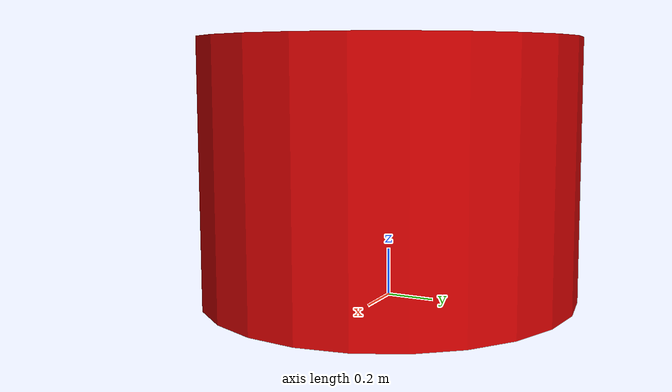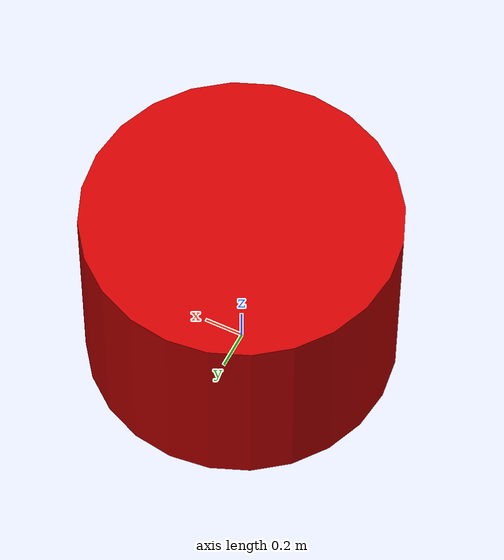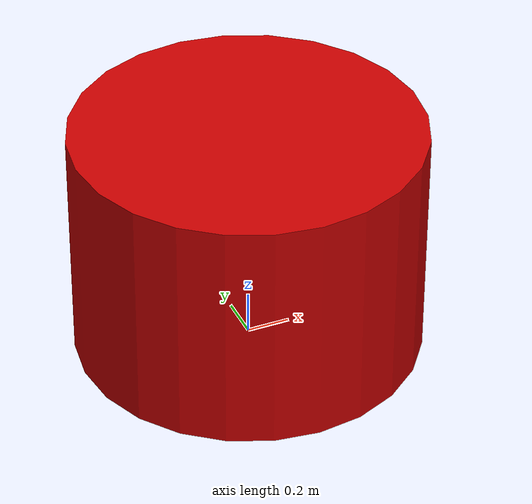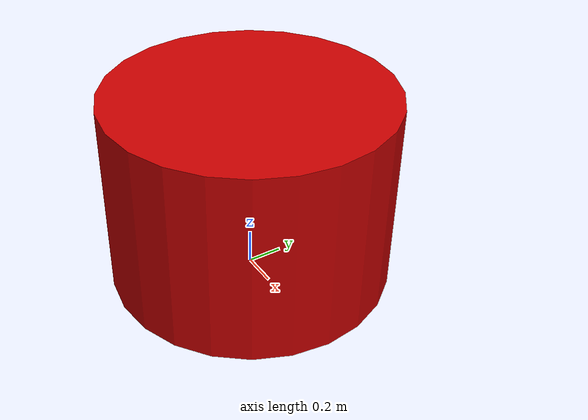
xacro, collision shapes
<?xml version="1.0"?>
<robot name="myrobot" xmlns:xacro="http://ros.org/wiki/xacro">

  <xacro:property name="base_rad" value=".8" />
  <xacro:property name="base_y" value="1.6" />
  <xacro:property name="base_z" value="1.1" />
  <xacro:property name="pan_x" value="0" />
  <xacro:property name="pan_y" value="0" />
  <xacro:property name="pan_z" value="0" />
  <xacro:property name="tilt_x" value="0" />
  <xacro:property name="tilt_y" value="0" />
  <xacro:property name="tilt_z" value="0" />
  <xacro:property name="base_inertia">
    <inertia ixx="0.001" ixy="0.0" ixz="0.0" iyy="0.001" iyz="0.0" izz="0.001" />
  </xacro:property>

  <material name="blue">
    <color rgba="0 0 .8 1"/>
  </material>

  <material name="red">
    <color rgba=".8 0 0 1"/>
  </material>

  <material name="green">
    <color rgba="0 .8 0 1"/>
  </material>

 <xacro:macro name="default_inertial" params="mass">
    <inertial>
      <mass value="${mass}" />
      <origin xyz="0 0 0"/>
      <xacro:insert_block name="base_inertia"/>
    </inertial>
 </xacro:macro>

  <link name="base_link">
    <visual>
      <origin xyz="0 0 0.7" rpy="0 0 0" />
      <geometry>
        <mesh filename="package://lookat_description/urdf/meshes/base_link.stl" scale="0.0075 0.0075 0.0075" />
      </geometry>
      <material name="red"/>
    </visual>

    <collision>
      <origin xyz="0 0 ${base_z/2}" rpy="0 0 0" />
      <geometry>
      	<cylinder radius="${base_rad}" length="${base_z}"/>
      </geometry>
    </collision>
    <xacro:default_inertial mass="10"/>
  </link>

  <joint name="joint_pan" type="revolute">
    <parent link="base_link"/>
    <child link="pan_link"/>
    <origin xyz="0 0 0.40" rpy="0 0 0"/>
    <axis xyz="0 0 1"/>
    <limit lower="-1.57" upper="1.57" effort="10" velocity="0.5" />
    <dynamics damping="0.7"/>
  </joint>

  <link name="pan_link">
    <visual>
      <origin xyz="0 0 0.43" rpy="0 0 0" />
      <geometry>
        <mesh filename="package://lookat_description/urdf/meshes/pan_link.stl" scale="0.01 0.01 0.01" />
      </geometry>
      <material name="blue"/>
    </visual>

    <collision>
      <origin xyz="0 0 ${pan_y/2}" rpy="0 0 0" />
      <geometry>
        <box size="${pan_x} ${pan_y} ${pan_z}"/>
      </geometry>
    </collision>
    <xacro:default_inertial mass="10"/>
  </link>

  <joint name="joint_tilt" type="revolute">
    <parent link="pan_link"/>
    <child link="tilt_link"/>
    <origin xyz="0 0 0.43" rpy="0 0 0"/>
    <axis xyz="0 1 0"/>
    <limit lower="-1.57" upper="1.57" effort="10" velocity="0.5" />
    <dynamics damping="0.7"/>
  </joint>

  <link name="tilt_link">
    <visual>
      <origin xyz="0 0 0" rpy="0 0 0" />
      <geometry>
        <mesh filename="package://lookat_description/urdf/meshes/tilt_link.stl" scale="0.01 0.01 0.01" />
      </geometry>
      <material name="green"/>
    </visual>

    <collision>
      <origin xyz="0 0 ${tilt_y/2}" rpy="0 0 0" />
      <geometry>
        <box size="${tilt_x} ${tilt_y} ${tilt_z}"/>
      </geometry>
    </collision>
    <xacro:default_inertial mass="10"/>
  </link>

</robot>
